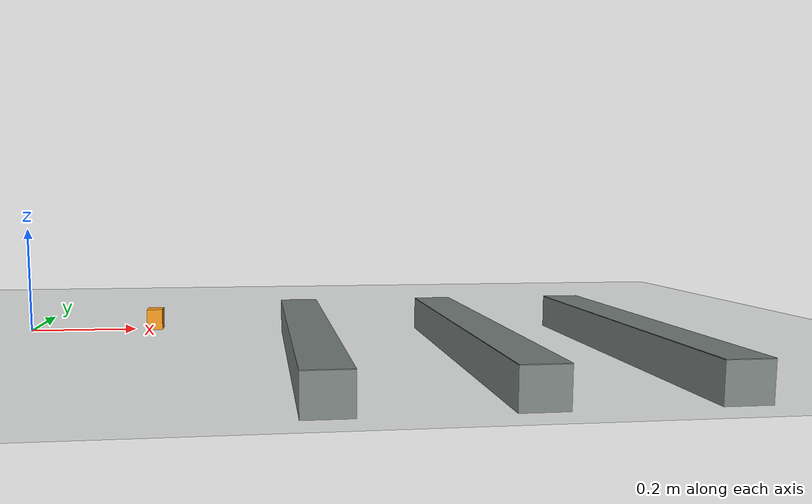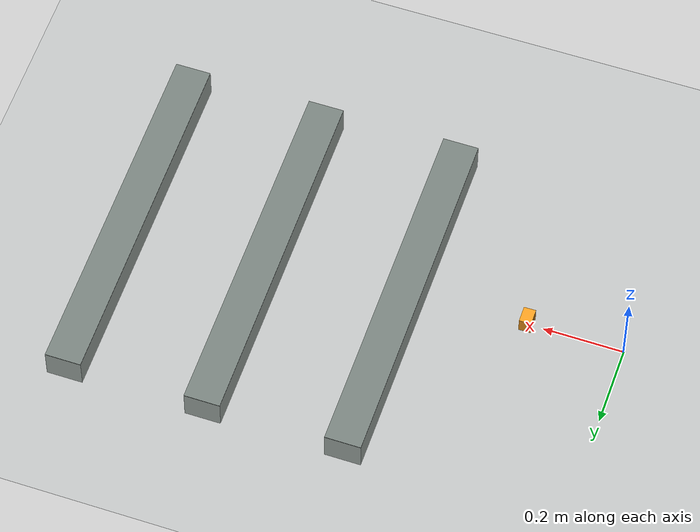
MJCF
<mujoco model="Sai_Agent_001_full_r24"><compiler angle="radian" inertiafromgeom="false" autolimits="true" /><option timestep=".001" integrator="implicitfast" iterations="50" cone="elliptic" /><default><geom density="0" friction=".8 .002 .0002" condim="4" solref=".006 1" contype="1" conaffinity="6" /><joint damping=".03" armature=".002" /></default><visual><global offwidth="1280" offheight="800" fovy="38" /><headlight ambient=".55 .55 .55" diffuse=".65 .65 .65" /></visual><asset><mesh name="chassis_contactmesh_2" file="contacts/cargo_shell_00.obj" /><mesh name="chassis_contactmesh_3" file="contacts/cargo_shell_01.obj" /><mesh name="chassis_contactmesh_4" file="contacts/cargo_shell_02.obj" /><mesh name="chassis_contactmesh_5" file="contacts/cargo_shell_03.obj" /><mesh name="chassis_contactmesh_6" file="contacts/cargo_shell_04.obj" /><mesh name="chassis_contactmesh_7" file="contacts/cargo_shell_05.obj" /><mesh name="chassis_contactmesh_8" file="contacts/cargo_shell_06.obj" /><mesh name="chassis_contactmesh_9" file="contacts/cargo_shell_07.obj" /><mesh name="chassis_contactmesh_10" file="contacts/cargo_shell_08.obj" /><mesh name="chassis_contactmesh_11" file="contacts/cargo_shell_09.obj" /><mesh name="chassis_contactmesh_12" file="contacts/cargo_shell_10.obj" /><mesh name="chassis_contactmesh_13" file="contacts/cargo_shell_11.obj" /><mesh name="chassis_contactmesh_14" file="contacts/cargo_shell_12.obj" /><mesh name="chassis_contactmesh_15" file="contacts/cargo_shell_13.obj" /><mesh name="chassis_contactmesh_16" file="contacts/cargo_shell_14.obj" /><mesh name="chassis_contactmesh_17" file="contacts/cargo_shell_15.obj" /><mesh name="chassis_contactmesh_18" file="contacts/cargo_shell_16.obj" /><mesh name="chassis_contactmesh_19" file="contacts/cargo_shell_17.obj" /><mesh name="chassis_contactmesh_20" file="contacts/cargo_shell_18.obj" /><mesh name="chassis_contactmesh_21" file="contacts/cargo_shell_19.obj" /><mesh name="chassis_contactmesh_22" file="contacts/cargo_shell_20.obj" /><mesh name="chassis_contactmesh_23" file="contacts/cargo_shell_21.obj" /><mesh name="chassis_contactmesh_24" file="contacts/cargo_shell_22.obj" /><mesh name="chassis_contactmesh_25" file="contacts/cargo_shell_23.obj" /><mesh name="chassis_contactmesh_26" file="contacts/cargo_shell_24.obj" /><mesh name="chassis_contactmesh_27" file="contacts/cargo_shell_25.obj" /><mesh name="chassis_contactmesh_28" file="contacts/cargo_shell_26.obj" /><mesh name="chassis_contactmesh_29" file="contacts/cargo_shell_27.obj" /><mesh name="chassis_contactmesh_30" file="contacts/cargo_shell_28.obj" /><mesh name="chassis_contactmesh_31" file="contacts/cargo_shell_29.obj" /><mesh name="chassis_contactmesh_32" file="contacts/cargo_shell_30.obj" /><mesh name="chassis_contactmesh_33" file="contacts/cargo_shell_31.obj" /><mesh name="arm_pan_carrier_contactmesh_0" file="contacts/pan_carrier_1_00.obj" /><mesh name="arm_upper_contactmesh_0" file="contacts/upper_2_00.obj" /><mesh name="arm_lower_contactmesh_0" file="contacts/lower_3_00.obj" /><mesh name="arm_wrist_contactmesh_0" file="contacts/wrist_7_00.obj" /><mesh name="arm_gripper_contactmesh_0" file="contacts/gripper_8_00.obj" /><mesh name="arm_gripper_contactmesh_1" file="contacts/gripper_8_01.obj" /><mesh name="arm_gripper_contactmesh_2" file="contacts/gripper_8_02.obj" /><mesh name="arm_gripper_contactmesh_3" file="contacts/gripper_8_03.obj" /><mesh name="arm_gripper_contactmesh_4" file="contacts/gripper_8_04.obj" /><mesh name="arm_gripper_contactmesh_5" file="contacts/gripper_8_05.obj" /><mesh name="arm_gripper_contactmesh_6" file="contacts/gripper_8_06.obj" /><mesh name="arm_gripper_contactmesh_7" file="contacts/gripper_8_07.obj" /><mesh name="arm_gripper_contactmesh_8" file="contacts/gripper_8_08.obj" /><mesh name="arm_gripper_contactmesh_9" file="contacts/gripper_8_09.obj" /><mesh name="arm_gripper_contactmesh_10" file="contacts/gripper_8_10.obj" /><mesh name="arm_gripper_contactmesh_11" file="contacts/gripper_8_11.obj" /><mesh name="arm_gripper_contactmesh_12" file="contacts/gripper_8_12.obj" /><mesh name="arm_gripper_contactmesh_13" file="contacts/gripper_8_13.obj" /><mesh name="arm_gripper_contactmesh_14" file="contacts/gripper_8_14.obj" /><mesh name="arm_gripper_contactmesh_15" file="contacts/gripper_8_15.obj" /><mesh name="arm_gripper_contactmesh_16" file="contacts/gripper_8_16.obj" /><mesh name="arm_gripper_contactmesh_17" file="contacts/gripper_8_17.obj" /><mesh name="arm_gripper_contactmesh_18" file="contacts/gripper_8_18.obj" /><mesh name="arm_gripper_contactmesh_19" file="contacts/gripper_8_19.obj" /><mesh name="arm_gripper_contactmesh_20" file="contacts/gripper_8_20.obj" /><mesh name="arm_gripper_contactmesh_21" file="contacts/gripper_8_21.obj" /><mesh name="arm_gripper_contactmesh_22" file="contacts/gripper_8_22.obj" /><mesh name="arm_gripper_contactmesh_23" file="contacts/gripper_8_23.obj" /><mesh name="arm_gripper_contactmesh_24" file="contacts/gripper_8_24.obj" /><mesh name="arm_gripper_contactmesh_25" file="contacts/gripper_8_25.obj" /><mesh name="arm_gripper_contactmesh_26" file="contacts/gripper_8_26.obj" /><mesh name="arm_gripper_contactmesh_27" file="contacts/gripper_8_27.obj" /><mesh name="arm_gripper_contactmesh_28" file="contacts/gripper_8_28.obj" /><mesh name="arm_gripper_contactmesh_29" file="contacts/gripper_8_29.obj" /><mesh name="arm_gripper_contactmesh_30" file="contacts/gripper_8_30.obj" /><mesh name="arm_gripper_contactmesh_31" file="contacts/gripper_8_31.obj" /><mesh name="arm_moving_jaw_contactmesh_0" file="contacts/moving_jaw_9_00.obj" /><mesh name="arm_moving_jaw_contactmesh_1" file="contacts/moving_jaw_9_01.obj" /><mesh name="arm_moving_jaw_contactmesh_2" file="contacts/moving_jaw_9_02.obj" /><mesh name="arm_moving_jaw_contactmesh_3" file="contacts/moving_jaw_9_03.obj" /><mesh name="arm_moving_jaw_contactmesh_4" file="contacts/moving_jaw_9_04.obj" /><mesh name="arm_moving_jaw_contactmesh_5" file="contacts/moving_jaw_9_05.obj" /><mesh name="arm_moving_jaw_contactmesh_6" file="contacts/moving_jaw_9_06.obj" /><mesh name="arm_moving_jaw_contactmesh_7" file="contacts/moving_jaw_9_07.obj" /><mesh name="arm_moving_jaw_contactmesh_8" file="contacts/moving_jaw_9_08.obj" /><mesh name="arm_moving_jaw_contactmesh_9" file="contacts/moving_jaw_9_09.obj" /><mesh name="arm_moving_jaw_contactmesh_10" file="contacts/moving_jaw_9_10.obj" /><mesh name="arm_moving_jaw_contactmesh_11" file="contacts/moving_jaw_9_11.obj" /><mesh name="arm_moving_jaw_contactmesh_12" file="contacts/moving_jaw_9_12.obj" /><mesh name="arm_moving_jaw_contactmesh_13" file="contacts/moving_jaw_9_13.obj" /><mesh name="arm_moving_jaw_contactmesh_14" file="contacts/moving_jaw_9_14.obj" /><mesh name="arm_moving_jaw_contactmesh_15" file="contacts/moving_jaw_9_15.obj" /><mesh name="arm_moving_jaw_contactmesh_16" file="contacts/moving_jaw_9_16.obj" /><mesh name="arm_moving_jaw_contactmesh_17" file="contacts/moving_jaw_9_17.obj" /><mesh name="arm_moving_jaw_contactmesh_18" file="contacts/moving_jaw_9_18.obj" /><mesh name="arm_moving_jaw_contactmesh_19" file="contacts/moving_jaw_9_19.obj" /><mesh name="arm_moving_jaw_contactmesh_20" file="contacts/moving_jaw_9_20.obj" /><mesh name="arm_moving_jaw_contactmesh_21" file="contacts/moving_jaw_9_21.obj" /><mesh name="arm_moving_jaw_contactmesh_22" file="contacts/moving_jaw_9_22.obj" /><mesh name="arm_moving_jaw_contactmesh_23" file="contacts/moving_jaw_9_23.obj" /><mesh name="arm_moving_jaw_contactmesh_24" file="contacts/moving_jaw_9_24.obj" /><mesh name="arm_moving_jaw_contactmesh_25" file="contacts/moving_jaw_9_25.obj" /><mesh name="arm_moving_jaw_contactmesh_26" file="contacts/moving_jaw_9_26.obj" /><mesh name="arm_moving_jaw_contactmesh_27" file="contacts/moving_jaw_9_27.obj" /><mesh name="arm_moving_jaw_contactmesh_28" file="contacts/moving_jaw_9_28.obj" /><mesh name="arm_moving_jaw_contactmesh_29" file="contacts/moving_jaw_9_29.obj" /><mesh name="arm_moving_jaw_contactmesh_30" file="contacts/moving_jaw_9_30.obj" /><mesh name="arm_moving_jaw_contactmesh_31" file="contacts/moving_jaw_9_31.obj" /></asset><worldbody><light pos="1 -2 4" dir="-.2 .4 -1" /><geom name="ground" type="plane" size="20 20 .1" rgba=".70 .73 .72 1" contype="2" conaffinity="5" /><body name="chassis" pos="0 0 .224"><freejoint name="floating_base" /><inertial pos="-0.00298935184472 0.00147360009768 0.00771891735136" mass="3.6410854990026498" fullinertia="0.0241230792903 0.0187868532614 0.0337982038644 -0.000371696436636 -0.000943447771971 -0.00030462885049" /><geom name="chassis_contact_0" type="box" rgba=".18 .22 .28 1" group="3" pos="0 0 -0.014" size="0.12 0.067 0.041" /><geom name="chassis_contact_1" type="box" rgba=".18 .22 .28 1" group="3" pos="-0.08975 0 0.038" size="0.05175 0.111 0.001" /><geom name="chassis_contact_2" type="mesh" rgba=".18 .22 .28 1" group="3" mesh="chassis_contactmesh_2" /><geom name="chassis_contact_3" type="mesh" rgba=".18 .22 .28 1" group="3" mesh="chassis_contactmesh_3" /><geom name="chassis_contact_4" type="mesh" rgba=".18 .22 .28 1" group="3" mesh="chassis_contactmesh_4" /><geom name="chassis_contact_5" type="mesh" rgba=".18 .22 .28 1" group="3" mesh="chassis_contactmesh_5" /><geom name="chassis_contact_6" type="mesh" rgba=".18 .22 .28 1" group="3" mesh="chassis_contactmesh_6" /><geom name="chassis_contact_7" type="mesh" rgba=".18 .22 .28 1" group="3" mesh="chassis_contactmesh_7" /><geom name="chassis_contact_8" type="mesh" rgba=".18 .22 .28 1" group="3" mesh="chassis_contactmesh_8" /><geom name="chassis_contact_9" type="mesh" rgba=".18 .22 .28 1" group="3" mesh="chassis_contactmesh_9" /><geom name="chassis_contact_10" type="mesh" rgba=".18 .22 .28 1" group="3" mesh="chassis_contactmesh_10" /><geom name="chassis_contact_11" type="mesh" rgba=".18 .22 .28 1" group="3" mesh="chassis_contactmesh_11" /><geom name="chassis_contact_12" type="mesh" rgba=".18 .22 .28 1" group="3" mesh="chassis_contactmesh_12" /><geom name="chassis_contact_13" type="mesh" rgba=".18 .22 .28 1" group="3" mesh="chassis_contactmesh_13" /><geom name="chassis_contact_14" type="mesh" rgba=".18 .22 .28 1" group="3" mesh="chassis_contactmesh_14" /><geom name="chassis_contact_15" type="mesh" rgba=".18 .22 .28 1" group="3" mesh="chassis_contactmesh_15" /><geom name="chassis_contact_16" type="mesh" rgba=".18 .22 .28 1" group="3" mesh="chassis_contactmesh_16" /><geom name="chassis_contact_17" type="mesh" rgba=".18 .22 .28 1" group="3" mesh="chassis_contactmesh_17" /><geom name="chassis_contact_18" type="mesh" rgba=".18 .22 .28 1" group="3" mesh="chassis_contactmesh_18" /><geom name="chassis_contact_19" type="mesh" rgba=".18 .22 .28 1" group="3" mesh="chassis_contactmesh_19" /><geom name="chassis_contact_20" type="mesh" rgba=".18 .22 .28 1" group="3" mesh="chassis_contactmesh_20" /><geom name="chassis_contact_21" type="mesh" rgba=".18 .22 .28 1" group="3" mesh="chassis_contactmesh_21" /><geom name="chassis_contact_22" type="mesh" rgba=".18 .22 .28 1" group="3" mesh="chassis_contactmesh_22" /><geom name="chassis_contact_23" type="mesh" rgba=".18 .22 .28 1" group="3" mesh="chassis_contactmesh_23" /><geom name="chassis_contact_24" type="mesh" rgba=".18 .22 .28 1" group="3" mesh="chassis_contactmesh_24" /><geom name="chassis_contact_25" type="mesh" rgba=".18 .22 .28 1" group="3" mesh="chassis_contactmesh_25" /><geom name="chassis_contact_26" type="mesh" rgba=".18 .22 .28 1" group="3" mesh="chassis_contactmesh_26" /><geom name="chassis_contact_27" type="mesh" rgba=".18 .22 .28 1" group="3" mesh="chassis_contactmesh_27" /><geom name="chassis_contact_28" type="mesh" rgba=".18 .22 .28 1" group="3" mesh="chassis_contactmesh_28" /><geom name="chassis_contact_29" type="mesh" rgba=".18 .22 .28 1" group="3" mesh="chassis_contactmesh_29" /><geom name="chassis_contact_30" type="mesh" rgba=".18 .22 .28 1" group="3" mesh="chassis_contactmesh_30" /><geom name="chassis_contact_31" type="mesh" rgba=".18 .22 .28 1" group="3" mesh="chassis_contactmesh_31" /><geom name="chassis_contact_32" type="mesh" rgba=".18 .22 .28 1" group="3" mesh="chassis_contactmesh_32" /><geom name="chassis_contact_33" type="mesh" rgba=".18 .22 .28 1" group="3" mesh="chassis_contactmesh_33" /><body name="front_left_haa" pos="0.08 0.1 0.000812737446806"><joint name="front_left_haa" type="hinge" axis="1 0 0" limited="true" range="-0.45 0.45" /><inertial pos="0.0342709656212 0.00683191650877 -8.01433919229e-12" mass="0.3723587323657154" diaginertia="0.000199865871851 0.000194857044869 0.000203824049134" /><geom name="front_left_haa_contact_0" type="capsule" rgba=".18 .22 .28 1" group="3" size="0.013" fromto="0 0 0 0.035 0.032 0" /><body name="front_left_upper" pos="0.035 0.032 0"><joint name="front_left_hip" type="hinge" axis="0 1 0" limited="true" range="-0.7 0.7" /><inertial pos="0.0463471772177 -0.0187045410886 -0.0693661033796" mass="0.40217792249786893" diaginertia="0.000364553482906 0.000406376960963 0.000294139286778" /><geom name="front_left_upper_contact_0" type="capsule" rgba=".18 .22 .28 1" group="3" size="0.013" fromto="0 0 0 0.05 0.004 -0.0748331477355" /><body name="front_left_lower" pos="0.05 0.004 -0.0748331477355"><joint name="front_left_knee" type="hinge" axis="0 1 0" limited="true" range="-1.2 1.2" /><inertial pos="-0.0440686978618 -0.00981995306591 -0.0863555010871" mass="0.31016661501863596" diaginertia="0.000431227371985 0.000561188911779 0.000227997517647" /><geom name="front_left_lower_contact_0" type="capsule" rgba=".18 .22 .28 1" group="3" size="0.013" fromto="0 0 0 -0.05 0.004 -0.0979795897113" /><body name="front_left_wheel" pos="-0.05 0.004 -0.0979795897113"><joint name="front_left_wheel" type="hinge" axis="0 1 0" limited="false" armature=".0003" /><inertial pos="-6.04722522057e-11 0.00632285226548 5.3058203664e-11" mass="0.17405915776164413" diaginertia="0.000125539159543 0.0002238928282 0.00012553915954" /><geom name="front_left_wheel_contact_0" type="cylinder" rgba=".18 .22 .28 1" group="3" pos="0 0.006 -6.93889390391e-18" size="0.048 0.016" quat="0.7071067812 0.7071067812 0 0" /></body></body></body></body><body name="front_right_haa" pos="0.08 -0.1 0.000812737446806"><joint name="front_right_haa" type="hinge" axis="1 0 0" limited="true" range="-0.45 0.45" /><inertial pos="0.0342709656212 -0.00683191650877 -8.01433919229e-12" mass="0.3723587323657154" diaginertia="0.000199865871851 0.000194857044869 0.000203824049134" /><geom name="front_right_haa_contact_0" type="capsule" rgba=".18 .22 .28 1" group="3" size="0.013" fromto="0 0 0 0.035 -0.032 0" /><body name="front_right_upper" pos="0.035 -0.032 0"><joint name="front_right_hip" type="hinge" axis="0 -1 0" limited="true" range="-0.7 0.7" /><inertial pos="0.0463471772177 0.0187045410886 -0.0693661033796" mass="0.40217792249786893" diaginertia="0.000364553482906 0.000406376960963 0.000294139286778" /><geom name="front_right_upper_contact_0" type="capsule" rgba=".18 .22 .28 1" group="3" size="0.013" fromto="0 0 0 0.05 -0.004 -0.0748331477355" /><body name="front_right_lower" pos="0.05 -0.004 -0.0748331477355"><joint name="front_right_knee" type="hinge" axis="0 -1 0" limited="true" range="-1.2 1.2" /><inertial pos="-0.0440686978618 0.00981995306591 -0.0863555010871" mass="0.31016661501863596" diaginertia="0.000431227371985 0.000561188911779 0.000227997517647" /><geom name="front_right_lower_contact_0" type="capsule" rgba=".18 .22 .28 1" group="3" size="0.013" fromto="0 0 0 -0.05 -0.004 -0.0979795897113" /><body name="front_right_wheel" pos="-0.05 -0.004 -0.0979795897113"><joint name="front_right_wheel" type="hinge" axis="0 -1 0" limited="false" armature=".0003" /><inertial pos="-6.04722244502e-11 -0.00632285226942 4.76915312797e-11" mass="0.17405915776164413" diaginertia="0.000125539159531 0.000223892828193 0.000125539159534" /><geom name="front_right_wheel_contact_0" type="cylinder" rgba=".18 .22 .28 1" group="3" pos="0 -0.006 0" size="0.048 0.016" quat="0.7071067812 0.7071067812 0 0" /></body></body></body></body><body name="rear_left_haa" pos="-0.08 0.1 0.000812737446806"><joint name="rear_left_haa" type="hinge" axis="-1 0 0" limited="true" range="-0.45 0.45" /><inertial pos="-0.034264076584 0.00683318988792 -1.32119593044e-11" mass="0.37244752934390074" diaginertia="0.000199905693304 0.000194963114375 0.000203913128607" /><geom name="rear_left_haa_contact_0" type="capsule" rgba=".18 .22 .28 1" group="3" size="0.013" fromto="0 0 0 -0.035 0.032 0" /><body name="rear_left_upper" pos="-0.035 0.032 0"><joint name="rear_left_hip" type="hinge" axis="0 1 0" limited="true" range="-0.7 0.7" /><inertial pos="-0.0463471771951 -0.0187045410886 -0.0693661033709" mass="0.40217792249786904" diaginertia="0.000364553483123 0.000406376961706 0.000294139287305" /><geom name="rear_left_upper_contact_0" type="capsule" rgba=".18 .22 .28 1" group="3" size="0.013" fromto="0 0 0 -0.05 0.004 -0.0748331477355" /><body name="rear_left_lower" pos="-0.05 0.004 -0.0748331477355"><joint name="rear_left_knee" type="hinge" axis="0 1 0" limited="true" range="-1.2 1.2" /><inertial pos="0.0440674458366 -0.0098199291105 -0.0863548839576" mass="0.31016661501863474" diaginertia="0.000431232016121 0.000561198072359 0.000228002320568" /><geom name="rear_left_lower_contact_0" type="capsule" rgba=".18 .22 .28 1" group="3" size="0.013" fromto="0 0 0 0.05 0.004 -0.0979795897113" /><body name="rear_left_wheel" pos="0.05 0.004 -0.0979795897113"><joint name="rear_left_wheel" type="hinge" axis="0 1 0" limited="false" armature=".0003" /><inertial pos="6.04722383279e-11 0.00632285226548 5.3058203664e-11" mass="0.17405915776164413" diaginertia="0.000125539159543 0.0002238928282 0.00012553915954" /><geom name="rear_left_wheel_contact_0" type="cylinder" rgba=".18 .22 .28 1" group="3" pos="0 0.006 -6.93889390391e-18" size="0.048 0.016" quat="0.7071067812 0.7071067812 0 0" /></body></body></body></body><body name="rear_right_haa" pos="-0.08 -0.1 0.000812737446806"><joint name="rear_right_haa" type="hinge" axis="-1 0 0" limited="true" range="-0.45 0.45" /><inertial pos="-0.034264076584 -0.00683318988792 -1.32119593044e-11" mass="0.37244752934390074" diaginertia="0.000199905693304 0.000194963114375 0.000203913128607" /><geom name="rear_right_haa_contact_0" type="capsule" rgba=".18 .22 .28 1" group="3" size="0.013" fromto="0 0 0 -0.035 -0.032 0" /><body name="rear_right_upper" pos="-0.035 -0.032 0"><joint name="rear_right_hip" type="hinge" axis="0 -1 0" limited="true" range="-0.7 0.7" /><inertial pos="-0.0463471771951 0.0187045410886 -0.0693661033709" mass="0.40217792249786904" diaginertia="0.000364553483123 0.000406376961706 0.000294139287305" /><geom name="rear_right_upper_contact_0" type="capsule" rgba=".18 .22 .28 1" group="3" size="0.013" fromto="0 0 0 -0.05 -0.004 -0.0748331477355" /><body name="rear_right_lower" pos="-0.05 -0.004 -0.0748331477355"><joint name="rear_right_knee" type="hinge" axis="0 -1 0" limited="true" range="-1.2 1.2" /><inertial pos="0.0440674458366 0.0098199291105 -0.0863548839576" mass="0.3101666150186348" diaginertia="0.000431232016121 0.000561198072359 0.000228002320568" /><geom name="rear_right_lower_contact_0" type="capsule" rgba=".18 .22 .28 1" group="3" size="0.013" fromto="0 0 0 0.05 -0.004 -0.0979795897113" /><body name="rear_right_wheel" pos="0.05 -0.004 -0.0979795897113"><joint name="rear_right_wheel" type="hinge" axis="0 -1 0" limited="false" armature=".0003" /><inertial pos="6.04722244502e-11 -0.00632285226942 4.76915174019e-11" mass="0.17405915776164413" diaginertia="0.000125539159531 0.000223892828193 0.000125539159534" /><geom name="rear_right_wheel_contact_0" type="cylinder" rgba=".18 .22 .28 1" group="3" pos="0 -0.006 0" size="0.048 0.016" quat="0.7071067812 0.7071067812 0 0" /></body></body></body></body><body name="arm_pan_carrier" pos="0.0829005675302 -0.00754322258164 0.0990352254596"><joint name="so101_shoulder_pan" type="hinge" axis="1.36167501881e-16 -0.00872653549837 0.999961923064" limited="true" range="-3.43914783552 0.295856763752" damping=".60" frictionloss=".052" armature=".028" /><inertial pos="0.0309482904656 -0.000290851973271 0.0286545953193" mass="0.100006" fullinertia="8.37599111071e-05 8.10392497007e-05 2.39784391922e-05 -7.0001726628e-08 -1.13503329235e-06 3.08931523289e-07" /><geom name="arm_pan_carrier_contact_0" type="mesh" rgba=".18 .22 .28 1" group="3" mesh="arm_pan_carrier_contactmesh_0" /><body name="arm_upper" pos="0.0308154616789 -0.0140569833466 0.0574784730244"><joint name="so101_shoulder_lift" type="hinge" axis="-0.00872653549837 0.999923847578 0.00872620321866" limited="true" range="-1.1691956518 2.21674309707" damping=".60" frictionloss=".052" armature=".028" /><inertial pos="-0.037784432436 0.0148955417296 0.0821331889017" mass="0.103" fullinertia="0.000137817195373 0.000142473996879 5.03140077478e-05 -3.69885111737e-07 3.62337518043e-05 1.11433506196e-06" /><geom name="arm_upper_contact_0" type="mesh" rgba=".18 .22 .28 1" group="3" mesh="arm_upper_contactmesh_0" /><body name="arm_lower" pos="-0.0323374633476 0.00123991543968 0.111456963537"><joint name="so101_elbow_flex" type="hinge" axis="-0.00116908955272 0.999913644752 0.0130895480753" limited="true" range="-2.85917219243 0.416108052453" damping=".60" frictionloss=".052" armature=".028" /><inertial pos="0.0772031252982 0.0167187637965 -0.0603454254614" mass="0.104" fullinertia="7.55871826708e-05 0.000145256357677 0.000113034259652 -1.98680708213e-06 6.32361086809e-05 1.31818299616e-06" /><geom name="arm_lower_contact_0" type="mesh" rgba=".18 .22 .28 1" group="3" mesh="arm_lower_contactmesh_0" /><body name="arm_wrist" pos="0.10595264946 0.00215761038458 -0.0823815700565"><joint name="so101_wrist_flex" type="hinge" axis="0.0111247281662 0.999837791742 0.0141644141475" limited="true" range="-2.21665711087 0.9947487128" damping=".60" frictionloss=".052" armature=".028" /><inertial pos="0.0103744575781 0.0260050537775 -0.0368917279501" mass="0.079" fullinertia="3.60465156126e-05 2.09242655562e-05 2.62465188312e-05 -1.10157277038e-06 2.86890329292e-06 3.42476869992e-06" /><geom name="arm_wrist_contact_0" type="mesh" rgba=".18 .22 .28 1" group="3" mesh="arm_wrist_contactmesh_0" /><body name="arm_gripper" pos="0.0152535597155 0.0177511593298 -0.0559687873944"><joint name="so101_wrist_roll" type="hinge" axis="-0.258824125964 -0.010803302736 0.965864048647" limited="true" range="-2.74093405939 2.73939979187" damping=".60" frictionloss=".052" armature=".028" /><inertial pos="0.0108743027078 0.00934591363135 -0.0273724997083" mass="0.10464642748535534" fullinertia="7.73647478802e-05 5.36430740862e-05 8.50682941137e-05 -1.7645594699e-05 -6.57626876314e-06 6.33001321591e-08" /><geom name="arm_gripper_contact_0" type="mesh" rgba=".18 .22 .28 1" group="3" mesh="arm_gripper_contactmesh_0" /><geom name="arm_gripper_contact_1" type="mesh" rgba=".18 .22 .28 1" group="3" mesh="arm_gripper_contactmesh_1" /><geom name="arm_gripper_contact_2" type="mesh" rgba=".18 .22 .28 1" group="3" mesh="arm_gripper_contactmesh_2" /><geom name="arm_gripper_contact_3" type="mesh" rgba=".18 .22 .28 1" group="3" mesh="arm_gripper_contactmesh_3" /><geom name="arm_gripper_contact_4" type="mesh" rgba=".18 .22 .28 1" group="3" mesh="arm_gripper_contactmesh_4" /><geom name="arm_gripper_contact_5" type="mesh" rgba=".18 .22 .28 1" group="3" mesh="arm_gripper_contactmesh_5" /><geom name="arm_gripper_contact_6" type="mesh" rgba=".18 .22 .28 1" group="3" mesh="arm_gripper_contactmesh_6" /><geom name="arm_gripper_contact_7" type="mesh" rgba=".18 .22 .28 1" group="3" mesh="arm_gripper_contactmesh_7" /><geom name="arm_gripper_contact_8" type="mesh" rgba=".18 .22 .28 1" group="3" mesh="arm_gripper_contactmesh_8" /><geom name="arm_gripper_contact_9" type="mesh" rgba=".18 .22 .28 1" group="3" mesh="arm_gripper_contactmesh_9" /><geom name="arm_gripper_contact_10" type="mesh" rgba=".18 .22 .28 1" group="3" mesh="arm_gripper_contactmesh_10" /><geom name="arm_gripper_contact_11" type="mesh" rgba=".18 .22 .28 1" group="3" mesh="arm_gripper_contactmesh_11" /><geom name="arm_gripper_contact_12" type="mesh" rgba=".18 .22 .28 1" group="3" mesh="arm_gripper_contactmesh_12" /><geom name="arm_gripper_contact_13" type="mesh" rgba=".18 .22 .28 1" group="3" mesh="arm_gripper_contactmesh_13" /><geom name="arm_gripper_contact_14" type="mesh" rgba=".18 .22 .28 1" group="3" mesh="arm_gripper_contactmesh_14" /><geom name="arm_gripper_contact_15" type="mesh" rgba=".18 .22 .28 1" group="3" mesh="arm_gripper_contactmesh_15" /><geom name="arm_gripper_contact_16" type="mesh" rgba=".18 .22 .28 1" group="3" mesh="arm_gripper_contactmesh_16" /><geom name="arm_gripper_contact_17" type="mesh" rgba=".18 .22 .28 1" group="3" mesh="arm_gripper_contactmesh_17" /><geom name="arm_gripper_contact_18" type="mesh" rgba=".18 .22 .28 1" group="3" mesh="arm_gripper_contactmesh_18" /><geom name="arm_gripper_contact_19" type="mesh" rgba=".18 .22 .28 1" group="3" mesh="arm_gripper_contactmesh_19" /><geom name="arm_gripper_contact_20" type="mesh" rgba=".18 .22 .28 1" group="3" mesh="arm_gripper_contactmesh_20" /><geom name="arm_gripper_contact_21" type="mesh" rgba=".18 .22 .28 1" group="3" mesh="arm_gripper_contactmesh_21" /><geom name="arm_gripper_contact_22" type="mesh" rgba=".18 .22 .28 1" group="3" mesh="arm_gripper_contactmesh_22" /><geom name="arm_gripper_contact_23" type="mesh" rgba=".18 .22 .28 1" group="3" mesh="arm_gripper_contactmesh_23" /><geom name="arm_gripper_contact_24" type="mesh" rgba=".18 .22 .28 1" group="3" mesh="arm_gripper_contactmesh_24" /><geom name="arm_gripper_contact_25" type="mesh" rgba=".18 .22 .28 1" group="3" mesh="arm_gripper_contactmesh_25" /><geom name="arm_gripper_contact_26" type="mesh" rgba=".18 .22 .28 1" group="3" mesh="arm_gripper_contactmesh_26" /><geom name="arm_gripper_contact_27" type="mesh" rgba=".18 .22 .28 1" group="3" mesh="arm_gripper_contactmesh_27" /><geom name="arm_gripper_contact_28" type="mesh" rgba=".18 .22 .28 1" group="3" mesh="arm_gripper_contactmesh_28" /><geom name="arm_gripper_contact_29" type="mesh" rgba=".18 .22 .28 1" group="3" mesh="arm_gripper_contactmesh_29" /><geom name="arm_gripper_contact_30" type="mesh" rgba=".18 .22 .28 1" group="3" mesh="arm_gripper_contactmesh_30" /><geom name="arm_gripper_contact_31" type="mesh" rgba=".18 .22 .28 1" group="3" mesh="arm_gripper_contactmesh_31" /><body name="arm_moving_jaw" pos="0.0263557971162 0.0160525292818 -0.0204553255103"><joint name="so101_gripper" type="hinge" axis="0.00269569152367 0.999925479659 0.0119066525861" limited="true" range="-1.34335015936 0.471792262711" damping=".60" frictionloss=".052" armature=".028" /><inertial pos="0.015869416688 -0.0165173572708 -0.0256869905565" mass="0.012" fullinertia="5.35818847474e-06 5.28528549974e-06 3.14849602552e-06 -8.39803562572e-08 2.11066781905e-06 1.13284546713e-07" /><geom name="arm_moving_jaw_contact_0" type="mesh" rgba=".18 .22 .28 1" group="3" mesh="arm_moving_jaw_contactmesh_0" /><geom name="arm_moving_jaw_contact_1" type="mesh" rgba=".18 .22 .28 1" group="3" mesh="arm_moving_jaw_contactmesh_1" /><geom name="arm_moving_jaw_contact_2" type="mesh" rgba=".18 .22 .28 1" group="3" mesh="arm_moving_jaw_contactmesh_2" /><geom name="arm_moving_jaw_contact_3" type="mesh" rgba=".18 .22 .28 1" group="3" mesh="arm_moving_jaw_contactmesh_3" /><geom name="arm_moving_jaw_contact_4" type="mesh" rgba=".18 .22 .28 1" group="3" mesh="arm_moving_jaw_contactmesh_4" /><geom name="arm_moving_jaw_contact_5" type="mesh" rgba=".18 .22 .28 1" group="3" mesh="arm_moving_jaw_contactmesh_5" /><geom name="arm_moving_jaw_contact_6" type="mesh" rgba=".18 .22 .28 1" group="3" mesh="arm_moving_jaw_contactmesh_6" /><geom name="arm_moving_jaw_contact_7" type="mesh" rgba=".18 .22 .28 1" group="3" mesh="arm_moving_jaw_contactmesh_7" /><geom name="arm_moving_jaw_contact_8" type="mesh" rgba=".18 .22 .28 1" group="3" mesh="arm_moving_jaw_contactmesh_8" /><geom name="arm_moving_jaw_contact_9" type="mesh" rgba=".18 .22 .28 1" group="3" mesh="arm_moving_jaw_contactmesh_9" /><geom name="arm_moving_jaw_contact_10" type="mesh" rgba=".18 .22 .28 1" group="3" mesh="arm_moving_jaw_contactmesh_10" /><geom name="arm_moving_jaw_contact_11" type="mesh" rgba=".18 .22 .28 1" group="3" mesh="arm_moving_jaw_contactmesh_11" /><geom name="arm_moving_jaw_contact_12" type="mesh" rgba=".18 .22 .28 1" group="3" mesh="arm_moving_jaw_contactmesh_12" /><geom name="arm_moving_jaw_contact_13" type="mesh" rgba=".18 .22 .28 1" group="3" mesh="arm_moving_jaw_contactmesh_13" /><geom name="arm_moving_jaw_contact_14" type="mesh" rgba=".18 .22 .28 1" group="3" mesh="arm_moving_jaw_contactmesh_14" /><geom name="arm_moving_jaw_contact_15" type="mesh" rgba=".18 .22 .28 1" group="3" mesh="arm_moving_jaw_contactmesh_15" /><geom name="arm_moving_jaw_contact_16" type="mesh" rgba=".18 .22 .28 1" group="3" mesh="arm_moving_jaw_contactmesh_16" /><geom name="arm_moving_jaw_contact_17" type="mesh" rgba=".18 .22 .28 1" group="3" mesh="arm_moving_jaw_contactmesh_17" /><geom name="arm_moving_jaw_contact_18" type="mesh" rgba=".18 .22 .28 1" group="3" mesh="arm_moving_jaw_contactmesh_18" /><geom name="arm_moving_jaw_contact_19" type="mesh" rgba=".18 .22 .28 1" group="3" mesh="arm_moving_jaw_contactmesh_19" /><geom name="arm_moving_jaw_contact_20" type="mesh" rgba=".18 .22 .28 1" group="3" mesh="arm_moving_jaw_contactmesh_20" /><geom name="arm_moving_jaw_contact_21" type="mesh" rgba=".18 .22 .28 1" group="3" mesh="arm_moving_jaw_contactmesh_21" /><geom name="arm_moving_jaw_contact_22" type="mesh" rgba=".18 .22 .28 1" group="3" mesh="arm_moving_jaw_contactmesh_22" /><geom name="arm_moving_jaw_contact_23" type="mesh" rgba=".18 .22 .28 1" group="3" mesh="arm_moving_jaw_contactmesh_23" /><geom name="arm_moving_jaw_contact_24" type="mesh" rgba=".18 .22 .28 1" group="3" mesh="arm_moving_jaw_contactmesh_24" /><geom name="arm_moving_jaw_contact_25" type="mesh" rgba=".18 .22 .28 1" group="3" mesh="arm_moving_jaw_contactmesh_25" /><geom name="arm_moving_jaw_contact_26" type="mesh" rgba=".18 .22 .28 1" group="3" mesh="arm_moving_jaw_contactmesh_26" /><geom name="arm_moving_jaw_contact_27" type="mesh" rgba=".18 .22 .28 1" group="3" mesh="arm_moving_jaw_contactmesh_27" /><geom name="arm_moving_jaw_contact_28" type="mesh" rgba=".18 .22 .28 1" group="3" mesh="arm_moving_jaw_contactmesh_28" /><geom name="arm_moving_jaw_contact_29" type="mesh" rgba=".18 .22 .28 1" group="3" mesh="arm_moving_jaw_contactmesh_29" /><geom name="arm_moving_jaw_contact_30" type="mesh" rgba=".18 .22 .28 1" group="3" mesh="arm_moving_jaw_contactmesh_30" /><geom name="arm_moving_jaw_contact_31" type="mesh" rgba=".18 .22 .28 1" group="3" mesh="arm_moving_jaw_contactmesh_31" /></body><camera name="wrist_camera" pos="0.0376619309362 0.0567115173589 -0.0334055735951" xyaxes="-0.181321129551 -0.727685850774 0.661510355597 0.983103093055 -0.151306287627 0.103027742622" fovy="67" /><site name="tool_center" pos="0.0331204572774 0.000775813237427 -0.0961817421381" size=".002" rgba="1 .2 .2 0" /></body></body></body></body></body><body name="cargo_slide_-1" pos="-0.0620000005215 -0.089999999851 0.05349999547"><joint name="cargo_slide_-1" type="slide" axis="0 1 0" limited="true" range="0 0.067" damping="1.0" armature="0.0" /><inertial pos="0.021645209106 -0.00522298465111 0.00103383779136" mass="0.03902668286855703" fullinertia="1.11849457607e-05 3.72937526949e-05 4.46616402595e-05 -6.72366389981e-06 2.54149139734e-07 3.72055903478e-07" /><geom name="cargo_slide_-1_contact_0" type="box" rgba=".18 .22 .28 1" group="3" pos="0 0 0" size="0.0209999997169 0.00799999758601 0.0139999985695" /></body><body name="cargo_slide_1" pos="-0.0620000005215 0.089999999851 0.05349999547"><joint name="cargo_slide_1" type="slide" axis="0 -1 0" limited="true" range="0 0.067" damping="1.0" armature="0.0" /><inertial pos="0.018433011491 0.00517679575002 0.00101425104277" mass="0.03884671441858212" fullinertia="1.10993641058e-05 2.50501370712e-05 3.23561712479e-05 5.04224632683e-06 -3.55081223878e-07 -3.68412062273e-07" /><geom name="cargo_slide_1_contact_0" type="box" rgba=".18 .22 .28 1" group="3" pos="0 0 0" size="0.0209999997169 0.00799999758601 0.0139999985695" /></body><body name="cargo_rotor" pos="0.003 0.088 0.045"><joint name="cargo_drive" type="hinge" axis="0 0 1" limited="true" range="0 3.50811179651" damping="0.002" armature="1e-05" /><inertial pos="-6.35388427463e-09 4.28888827231e-10 -0.00137367501445" mass="0.01892" fullinertia="2.14771533962e-06 2.1477157658e-06 3.40043528679e-06 -3.17690997023e-13 1.22099769409e-13 -1.49717085832e-14" /></body><camera name="main_camera" pos="0.164569427081 0.07 0.0699222662043" xyaxes="0 -1 0 0.707106781187 0 0.707106781187" fovy="67" /></body><body name="item" pos="0.240023671429 2.41489046314e-07 0.0203730734949" quat="0.0030361553291 0.70523503112 0.708960467238 -0.00306407185546"><freejoint name="item_free" /><inertial pos="0 0 0" mass=".1" diaginertia="2.08333333333e-05 2.66666666667e-05 2.08333333333e-05" /><geom name="item_box" type="box" size="0.02 0.015 0.02" mass=".1" rgba=".95 .60 .12 1" contype="4" conaffinity="3" /></body><geom name="course_0" type="box" pos="0.55 0 -0.04" size=".045 .45 .04" rgba=".45 .49 .47 1" contype="2" conaffinity="5" /><geom name="course_1" type="box" pos="0.9 0 -0.04" size=".045 .45 .04" rgba=".45 .49 .47 1" contype="2" conaffinity="5" /><geom name="course_2" type="box" pos="1.25 0 -0.04" size=".045 .45 .04" rgba=".45 .49 .47 1" contype="2" conaffinity="5" /></worldbody><actuator><motor name="front_left_haa_motor" joint="front_left_haa" ctrlrange="-8 8" forcerange="-8 8" /><motor name="front_left_hip_motor" joint="front_left_hip" ctrlrange="-8 8" forcerange="-8 8" /><motor name="front_left_knee_motor" joint="front_left_knee" ctrlrange="-8 8" forcerange="-8 8" /><motor name="front_left_wheel_motor" joint="front_left_wheel" ctrlrange="-1.3 1.3" forcerange="-1.3 1.3" /><motor name="front_right_haa_motor" joint="front_right_haa" ctrlrange="-8 8" forcerange="-8 8" /><motor name="front_right_hip_motor" joint="front_right_hip" ctrlrange="-8 8" forcerange="-8 8" /><motor name="front_right_knee_motor" joint="front_right_knee" ctrlrange="-8 8" forcerange="-8 8" /><motor name="front_right_wheel_motor" joint="front_right_wheel" ctrlrange="-1.3 1.3" forcerange="-1.3 1.3" /><motor name="rear_left_haa_motor" joint="rear_left_haa" ctrlrange="-8 8" forcerange="-8 8" /><motor name="rear_left_hip_motor" joint="rear_left_hip" ctrlrange="-8 8" forcerange="-8 8" /><motor name="rear_left_knee_motor" joint="rear_left_knee" ctrlrange="-8 8" forcerange="-8 8" /><motor name="rear_left_wheel_motor" joint="rear_left_wheel" ctrlrange="-1.3 1.3" forcerange="-1.3 1.3" /><motor name="rear_right_haa_motor" joint="rear_right_haa" ctrlrange="-8 8" forcerange="-8 8" /><motor name="rear_right_hip_motor" joint="rear_right_hip" ctrlrange="-8 8" forcerange="-8 8" /><motor name="rear_right_knee_motor" joint="rear_right_knee" ctrlrange="-8 8" forcerange="-8 8" /><motor name="rear_right_wheel_motor" joint="rear_right_wheel" ctrlrange="-1.3 1.3" forcerange="-1.3 1.3" /><motor name="so101_shoulder_pan_motor" joint="so101_shoulder_pan" ctrlrange="-2.94 2.94" forcerange="-2.94 2.94" /><motor name="so101_shoulder_lift_motor" joint="so101_shoulder_lift" ctrlrange="-2.94 2.94" forcerange="-2.94 2.94" /><motor name="so101_elbow_flex_motor" joint="so101_elbow_flex" ctrlrange="-2.94 2.94" forcerange="-2.94 2.94" /><motor name="so101_wrist_flex_motor" joint="so101_wrist_flex" ctrlrange="-2.94 2.94" forcerange="-2.94 2.94" /><motor name="so101_wrist_roll_motor" joint="so101_wrist_roll" ctrlrange="-2.94 2.94" forcerange="-2.94 2.94" /><motor name="so101_gripper_motor" joint="so101_gripper" ctrlrange="-2.94 2.94" forcerange="-2.94 2.94" /><motor name="cargo_drive_motor" joint="cargo_drive" ctrlrange="-0.12 0.12" forcerange="-0.12 0.12" /></actuator><equality><joint name="belt_to_pad_-1" joint1="cargo_slide_-1" joint2="cargo_drive" polycoef="0 0.019098593171 0 0 0" solref=".002 1" solimp=".999 .999 .0001" /><joint name="belt_to_pad_1" joint1="cargo_slide_1" joint2="cargo_drive" polycoef="0 0.019098593171 0 0 0" solref=".002 1" solimp=".999 .999 .0001" /></equality></mujoco>
